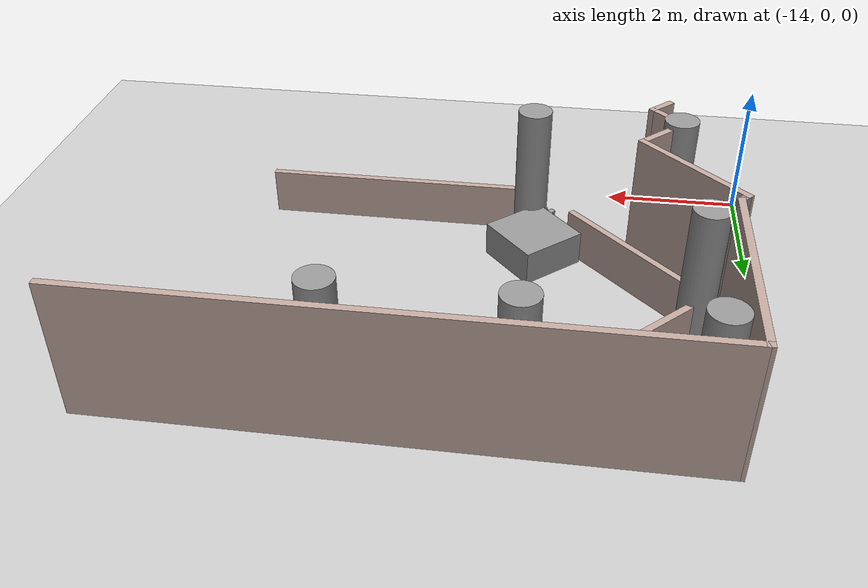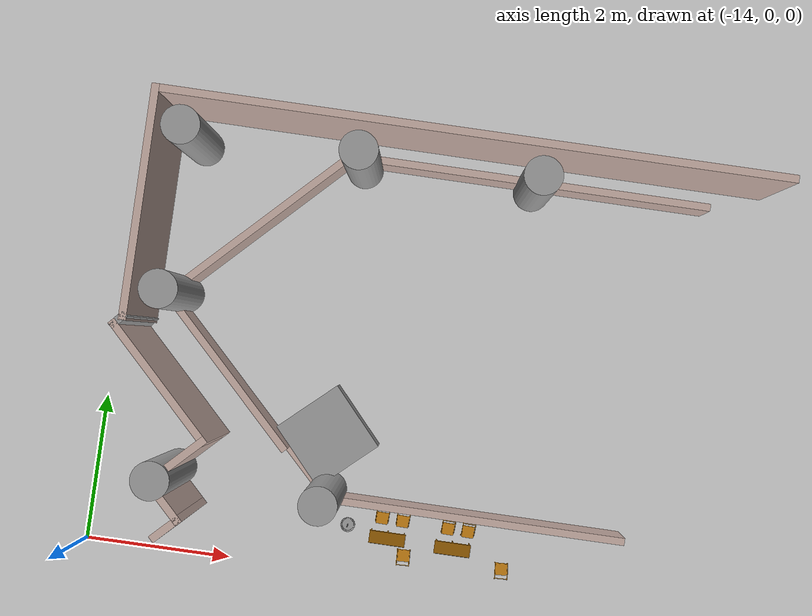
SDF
<sdf version="1.6">
 <world name="default">
  <model name="ground_plane">
   <static>1</static>
   <link name="link">
    <collision name="collision">
     <geometry><plane><normal>0 0 1</normal><size>100 100</size></plane></geometry>
     <surface>
      <contact><collide_bitmask>65535</collide_bitmask></contact>
      <friction><ode><mu>100</mu><mu2>50</mu2></ode></friction>
     </surface>
    </collision>
    <visual name="visual">
     <cast_shadows>0</cast_shadows>
     <geometry><plane><normal>0 0 1</normal><size>100 100</size></plane></geometry>
     <material>
      <script><uri>file://media/materials/scripts/gazebo.material</uri><name>Gazebo/Grey</name></script>
     </material>
    </visual>
   </link>
  </model>
  <model name="gedung_p">
   <pose>2.96636 -2.09069 0 0 -0 0</pose>
   <link name="Wall_17">
    <collision name="Wall_17_Collision">
     <geometry><box><size>0.449929 0.1 2</size></box></geometry>
     <pose>0 0 1 0 -0 0</pose>
    </collision>
    <visual name="Wall_17_Visual">
     <pose>0 0 1 0 -0 0</pose>
     <geometry><box><size>0.449929 0.1 2</size></box></geometry>
     <material>
      <script><uri>file://media/materials/scripts/gazebo.material</uri><name>Gazebo/Grey</name></script>
      <ambient>0.760784 0.662745 0.627451 1</ambient>
     </material>
     <meta><layer>0</layer></meta>
    </visual>
    <pose>-15.574 2.6753 0 0 -0 0.785398</pose>
   </link>
   <link name="Wall_18">
    <collision name="Wall_18_Collision">
     <geometry><box><size>0.7 0.1 2</size></box></geometry>
     <pose>0 0 1 0 -0 0</pose>
    </collision>
    <visual name="Wall_18_Visual">
     <pose>0 0 1 0 -0 0</pose>
     <geometry><box><size>0.7 0.1 2</size></box></geometry>
     <material>
      <script><uri>file://media/materials/scripts/gazebo.material</uri><name>Gazebo/Grey</name></script>
      <ambient>0.760784 0.662745 0.627451 1</ambient>
     </material>
     <meta><layer>0</layer></meta>
    </visual>
    <pose>-15.6625 3.01131 0 0 -0 2.35502</pose>
   </link>
   <link name="Wall_19">
    <collision name="Wall_19_Collision">
     <geometry><box><size>0.949911 0.1 2</size></box></geometry>
     <pose>0 0 1 0 -0 0</pose>
    </collision>
    <visual name="Wall_19_Visual">
     <pose>0 0 1 0 -0 0</pose>
     <geometry><box><size>0.949911 0.1 2</size></box></geometry>
     <material>
      <script><uri>file://media/materials/scripts/gazebo.material</uri><name>Gazebo/Grey</name></script>
      <ambient>0.760784 0.662745 0.627451 1</ambient>
     </material>
     <meta><layer>0</layer></meta>
    </visual>
    <pose>-15.574 3.52431 0 0 -0 0.785398</pose>
   </link>
   <link name="Wall_21">
    <collision name="Wall_21_Collision">
     <geometry><box><size>1.95 0.1 2</size></box></geometry>
     <pose>0 0 1 0 -0 0</pose>
    </collision>
    <visual name="Wall_21_Visual">
     <pose>0 0 1 0 -0 0</pose>
     <geometry><box><size>1.95 0.1 2</size></box></geometry>
     <material>
      <script><uri>file://media/materials/scripts/gazebo.material</uri><name>Gazebo/Grey</name></script>
      <ambient>0.760784 0.662745 0.627451 1</ambient>
     </material>
     <meta><layer>0</layer></meta>
    </visual>
    <pose>-15.9275 4.47881 0 0 -0 2.35619</pose>
   </link>
   <link name="Wall_22">
    <collision name="Wall_22_Collision">
     <geometry><box><size>0.246659 0.1 2</size></box></geometry>
     <pose>0 0 1 0 -0 0</pose>
    </collision>
    <visual name="Wall_22_Visual">
     <pose>0 0 1 0 -0 0</pose>
     <geometry><box><size>0.246659 0.1 2</size></box></geometry>
     <material>
      <script><uri>file://media/materials/scripts/gazebo.material</uri><name>Gazebo/Grey</name></script>
      <ambient>1 1 1 1</ambient>
     </material>
     <meta><layer>0</layer></meta>
    </visual>
    <pose>-16.533 5.1878 0 0 -0 0.848118</pose>
   </link>
   <link name="Wall_23">
    <collision name="Wall_23_Collision">
     <geometry><box><size>3 0.1 2</size></box></geometry>
     <pose>0 0 1 0 -0 0</pose>
    </collision>
    <visual name="Wall_23_Visual">
     <pose>0 0 1 0 -0 0</pose>
     <geometry><box><size>3 0.1 2</size></box></geometry>
     <material>
      <script><uri>file://media/materials/scripts/gazebo.material</uri><name>Gazebo/Grey</name></script>
      <ambient>0.760784 0.662745 0.627451 1</ambient>
     </material>
     <meta><layer>0</layer></meta>
    </visual>
    <pose>-16.4845 6.6928 0 0 -0 1.5708</pose>
   </link>
   <link name="Wall_25">
    <collision name="Wall_25_Collision">
     <geometry><box><size>8.2039 0.1 2</size></box></geometry>
     <pose>0 0 1 0 -0 0</pose>
    </collision>
    <visual name="Wall_25_Visual">
     <pose>0 0 1 0 -0 0</pose>
     <geometry><box><size>8.2039 0.1 2</size></box></geometry>
     <material>
      <script><uri>file://media/materials/scripts/gazebo.material</uri><name>Gazebo/Grey</name></script>
      <ambient>0.760784 0.662745 0.627451 1</ambient>
     </material>
     <meta><layer>0</layer></meta>
    </visual>
    <pose>-12.4325 8.1463 0 0 -0 0.000864</pose>
   </link>
   <link name="Wall_46">
    <collision name="Wall_46_Collision">
     <geometry><box><size>4.2 0.1 0.7</size></box></geometry>
     <pose>0 0 0.35 0 -0 0</pose>
    </collision>
    <visual name="Wall_46_Visual">
     <pose>0 0 0.35 0 -0 0</pose>
     <geometry><box><size>4.2 0.1 0.7</size></box></geometry>
     <material>
      <script><uri>file://media/materials/scripts/gazebo.material</uri><name>Gazebo/Grey</name></script>
      <ambient>0.760784 0.662745 0.627451 1</ambient>
     </material>
     <meta><layer>0</layer></meta>
    </visual>
    <pose>-11.7325 3.17481 0 0 -0 3.14159</pose>
   </link>
   <link name="Wall_54">
    <collision name="Wall_54_Collision">
     <geometry><box><size>0.95 0.1 0.1</size></box></geometry>
     <pose>0 0 0.05 0 -0 0</pose>
    </collision>
    <visual name="Wall_54_Visual">
     <pose>0 0 0.05 0 -0 0</pose>
     <geometry><box><size>0.95 0.1 0.1</size></box></geometry>
     <material>
      <script><uri>file://media/materials/scripts/gazebo.material</uri><name>Gazebo/Grey</name></script>
      <ambient>0.760784 0.662745 0.627451 1</ambient>
     </material>
     <meta><layer>0</layer></meta>
    </visual>
    <pose>-14.083 3.47531 0 0 -0 2.35619</pose>
   </link>
   <link name="Wall_55">
    <collision name="Wall_55_Collision">
     <geometry><box><size>2.7 0.1 0.7</size></box></geometry>
     <pose>0 0 0.35 0 -0 0</pose>
    </collision>
    <visual name="Wall_55_Visual">
     <pose>0 0 0.35 0 -0 0</pose>
     <geometry><box><size>2.7 0.1 0.7</size></box></geometry>
     <material>
      <script><uri>file://media/materials/scripts/gazebo.material</uri><name>Gazebo/Grey</name></script>
      <ambient>0.760784 0.662745 0.627451 1</ambient>
     </material>
     <meta><layer>0</layer></meta>
    </visual>
    <pose>-15.3025 4.6948 0 0 -0 2.35619</pose>
   </link>
   <link name="Wall_84">
    <collision name="Wall_84_Collision">
     <geometry><box><size>3.2 0.1 0.7</size></box></geometry>
     <pose>0 0 0.35 0 -0 0</pose>
    </collision>
    <visual name="Wall_84_Visual">
     <pose>0 0 0.35 0 -0 0</pose>
     <geometry><box><size>3.2 0.1 0.7</size></box></geometry>
     <material>
      <script><uri>file://media/materials/scripts/gazebo.material</uri><name>Gazebo/Grey</name></script>
      <ambient>0.760784 0.662745 0.627451 1</ambient>
     </material>
     <meta><layer>0</layer></meta>
    </visual>
    <pose>-15.1255 6.70981 0 0 -0 0.785398</pose>
   </link>
   <link name="Wall_86">
    <collision name="Wall_86_Collision">
     <geometry><box><size>4.95 0.1 0.7</size></box></geometry>
     <pose>0 0 0.35 0 -0 0</pose>
    </collision>
    <visual name="Wall_86_Visual">
     <pose>0 0 0.35 0 -0 0</pose>
     <geometry><box><size>4.95 0.1 0.7</size></box></geometry>
     <material>
      <script><uri>file://media/materials/scripts/gazebo.material</uri><name>Gazebo/Grey</name></script>
      <ambient>0.760784 0.662745 0.627451 1</ambient>
     </material>
     <meta><layer>0</layer></meta>
    </visual>
    <pose>-11.6045 7.80581 0 0 -0 0</pose>
   </link>
   <static>1</static>
  </model>
  <model name="tiang_besar_4">
   <link name="link_0">
    <inertial>
     <mass>1</mass>
     <inertia>
      <ixx>0.166667</ixx>
      <ixy>0</ixy>
      <ixz>0</ixz>
      <iyy>0.166667</iyy>
      <iyz>0</iyz>
      <izz>0.166667</izz>
     </inertia>
    </inertial>
    <pose>0.080543 -0.031124 0 0 -0 0</pose>
    <visual name="visual">
     <geometry>
      <mesh><uri>/home/thardi/Gazebo Objek/cylinder sedang.dae</uri><scale>1 1 1.15</scale></mesh>
     </geometry>
     <material>
      <lighting>1</lighting>
      <script><uri>file://media/materials/scripts/gazebo.material</uri><name>Gazebo/Grey</name></script>
      <shader type="vertex"><normal_map>__default__</normal_map></shader>
      <ambient>0.3 0.3 0.3 1</ambient>
      <diffuse>0.7 0.7 0.7 1</diffuse>
      <specular>0.01 0.01 0.01 1</specular>
      <emissive>0 0 0 1</emissive>
     </material>
    </visual>
    <collision name="collision">
     <geometry>
      <mesh><uri>/home/thardi/Gazebo Objek/cylinder sedang.dae</uri><scale>1 1 1.15</scale></mesh>
     </geometry>
     <surface>
      <friction>
       <ode><mu>1.15</mu><mu2>1</mu2><fdir1>0 0 0</fdir1><slip1>0</slip1><slip2>0</slip2></ode>
       <torsional>
        <coefficient>1</coefficient>
        <patch_radius>0</patch_radius>
        <surface_radius>0</surface_radius>
        <use_patch_radius>1</use_patch_radius>
        <ode><slip>0</slip></ode>
       </torsional>
      </friction>
      <bounce><restitution_coefficient>0</restitution_coefficient><threshold>1e+06</threshold></bounce>
      <contact>
       <collide_without_contact>0</collide_without_contact>
       <collide_without_contact_bitmask>1</collide_without_contact_bitmask>
       <collide_bitmask>1</collide_bitmask>
       <ode>
        <soft_cfm>0</soft_cfm>
        <soft_erp>0.2</soft_erp>
        <kp>1e+13</kp>
        <kd>1</kd>
        <max_vel>0.01</max_vel>
        <min_depth>0</min_depth>
       </ode>
       <bullet>
        <split_impulse>1</split_impulse>
        <split_impulse_penetration_threshold>-0.01</split_impulse_penetration_threshold>
        <soft_cfm>0</soft_cfm>
        <soft_erp>0.2</soft_erp>
        <kp>1e+13</kp>
        <kd>1</kd>
       </bullet>
      </contact>
     </surface>
    </collision>
   </link>
   <static>1</static>
   <pose>-10.8337 1.18079 0 0 -0 0</pose>
  </model>
  <model name="tiang_besar_6">
   <link name="link_0">
    <inertial>
     <mass>1</mass>
     <inertia>
      <ixx>0.166667</ixx>
      <ixy>0</ixy>
      <ixz>0</ixz>
      <iyy>0.166667</iyy>
      <iyz>0</iyz>
      <izz>0.166667</izz>
     </inertia>
    </inertial>
    <pose>0.080543 -0.031124 0 0 -0 0</pose>
    <visual name="visual">
     <geometry>
      <mesh><uri>/home/thardi/Gazebo Objek/cylinder sedang.dae</uri><scale>1 1 1.15</scale></mesh>
     </geometry>
     <material>
      <lighting>1</lighting>
      <script><uri>file://media/materials/scripts/gazebo.material</uri><name>Gazebo/Grey</name></script>
      <shader type="vertex"><normal_map>__default__</normal_map></shader>
      <ambient>0.3 0.3 0.3 1</ambient>
      <diffuse>0.7 0.7 0.7 1</diffuse>
      <specular>0.01 0.01 0.01 1</specular>
      <emissive>0 0 0 1</emissive>
     </material>
    </visual>
    <collision name="collision">
     <geometry>
      <mesh><uri>/home/thardi/Gazebo Objek/cylinder sedang.dae</uri><scale>1 1 1.15</scale></mesh>
     </geometry>
     <surface>
      <friction>
       <ode><mu>1.15</mu><mu2>1</mu2><fdir1>0 0 0</fdir1><slip1>0</slip1><slip2>0</slip2></ode>
       <torsional>
        <coefficient>1</coefficient>
        <patch_radius>0</patch_radius>
        <surface_radius>0</surface_radius>
        <use_patch_radius>1</use_patch_radius>
        <ode><slip>0</slip></ode>
       </torsional>
      </friction>
      <bounce><restitution_coefficient>0</restitution_coefficient><threshold>1e+06</threshold></bounce>
      <contact>
       <collide_without_contact>0</collide_without_contact>
       <collide_without_contact_bitmask>1</collide_without_contact_bitmask>
       <collide_bitmask>1</collide_bitmask>
       <ode>
        <soft_cfm>0</soft_cfm>
        <soft_erp>0.2</soft_erp>
        <kp>1e+13</kp>
        <kd>1</kd>
        <max_vel>0.01</max_vel>
        <min_depth>0</min_depth>
       </ode>
       <bullet>
        <split_impulse>1</split_impulse>
        <split_impulse_penetration_threshold>-0.01</split_impulse_penetration_threshold>
        <soft_cfm>0</soft_cfm>
        <soft_erp>0.2</soft_erp>
        <kp>1e+13</kp>
        <kd>1</kd>
       </bullet>
      </contact>
     </surface>
    </collision>
   </link>
   <static>1</static>
   <pose>-12.9543 1.19223 0 0 -0 0</pose>
  </model>
  <model name="tiang_besar_7">
   <link name="link_0">
    <inertial>
     <mass>1</mass>
     <inertia>
      <ixx>0.166667</ixx>
      <ixy>0</ixy>
      <ixz>0</ixz>
      <iyy>0.166667</iyy>
      <iyz>0</iyz>
      <izz>0.166667</izz>
     </inertia>
    </inertial>
    <pose>0.080543 -0.031124 0 0 -0 0</pose>
    <visual name="visual">
     <geometry>
      <mesh><uri>/home/thardi/Gazebo Objek/cylinder sedang.dae</uri><scale>1 1 1.15</scale></mesh>
     </geometry>
     <material>
      <lighting>1</lighting>
      <script><uri>file://media/materials/scripts/gazebo.material</uri><name>Gazebo/Grey</name></script>
      <shader type="vertex"><normal_map>__default__</normal_map></shader>
      <ambient>0.3 0.3 0.3 1</ambient>
      <diffuse>0.7 0.7 0.7 1</diffuse>
      <specular>0.01 0.01 0.01 1</specular>
      <emissive>0 0 0 1</emissive>
     </material>
    </visual>
    <collision name="collision">
     <geometry>
      <mesh><uri>/home/thardi/Gazebo Objek/cylinder sedang.dae</uri><scale>1 1 1.15</scale></mesh>
     </geometry>
     <surface>
      <friction>
       <ode><mu>1.15</mu><mu2>1</mu2><fdir1>0 0 0</fdir1><slip1>0</slip1><slip2>0</slip2></ode>
       <torsional>
        <coefficient>1</coefficient>
        <patch_radius>0</patch_radius>
        <surface_radius>0</surface_radius>
        <use_patch_radius>1</use_patch_radius>
        <ode><slip>0</slip></ode>
       </torsional>
      </friction>
      <bounce><restitution_coefficient>0</restitution_coefficient><threshold>1e+06</threshold></bounce>
      <contact>
       <collide_without_contact>0</collide_without_contact>
       <collide_without_contact_bitmask>1</collide_without_contact_bitmask>
       <collide_bitmask>1</collide_bitmask>
       <ode>
        <soft_cfm>0</soft_cfm>
        <soft_erp>0.2</soft_erp>
        <kp>1e+13</kp>
        <kd>1</kd>
        <max_vel>0.01</max_vel>
        <min_depth>0</min_depth>
       </ode>
       <bullet>
        <split_impulse>1</split_impulse>
        <split_impulse_penetration_threshold>-0.01</split_impulse_penetration_threshold>
        <soft_cfm>0</soft_cfm>
        <soft_erp>0.2</soft_erp>
        <kp>1e+13</kp>
        <kd>1</kd>
       </bullet>
      </contact>
     </surface>
    </collision>
   </link>
   <static>1</static>
   <pose>-13.1921 3.58646 0 0 -0 0</pose>
  </model>
  <model name="tiang_besar_8">
   <link name="link_0">
    <inertial>
     <mass>1</mass>
     <inertia>
      <ixx>0.166667</ixx>
      <ixy>0</ixy>
      <ixz>0</ixz>
      <iyy>0.166667</iyy>
      <iyz>0</iyz>
      <izz>0.166667</izz>
     </inertia>
    </inertial>
    <pose>0.080543 -0.031124 0 0 -0 0</pose>
    <visual name="visual">
     <geometry>
      <mesh><uri>/home/thardi/Gazebo Objek/cylinder sedang.dae</uri><scale>1 1 1.15</scale></mesh>
     </geometry>
     <material>
      <lighting>1</lighting>
      <script><uri>file://media/materials/scripts/gazebo.material</uri><name>Gazebo/Grey</name></script>
      <shader type="vertex"><normal_map>__default__</normal_map></shader>
      <ambient>0.3 0.3 0.3 1</ambient>
      <diffuse>0.7 0.7 0.7 1</diffuse>
      <specular>0.01 0.01 0.01 1</specular>
      <emissive>0 0 0 1</emissive>
     </material>
    </visual>
    <collision name="collision">
     <geometry>
      <mesh><uri>/home/thardi/Gazebo Objek/cylinder sedang.dae</uri><scale>1 1 1.15</scale></mesh>
     </geometry>
     <surface>
      <friction>
       <ode><mu>1.15</mu><mu2>1</mu2><fdir1>0 0 0</fdir1><slip1>0</slip1><slip2>0</slip2></ode>
       <torsional>
        <coefficient>1</coefficient>
        <patch_radius>0</patch_radius>
        <surface_radius>0</surface_radius>
        <use_patch_radius>1</use_patch_radius>
        <ode><slip>0</slip></ode>
       </torsional>
      </friction>
      <bounce><restitution_coefficient>0</restitution_coefficient><threshold>1e+06</threshold></bounce>
      <contact>
       <collide_without_contact>0</collide_without_contact>
       <collide_without_contact_bitmask>1</collide_without_contact_bitmask>
       <collide_bitmask>1</collide_bitmask>
       <ode>
        <soft_cfm>0</soft_cfm>
        <soft_erp>0.2</soft_erp>
        <kp>1e+13</kp>
        <kd>1</kd>
        <max_vel>0.01</max_vel>
        <min_depth>0</min_depth>
       </ode>
       <bullet>
        <split_impulse>1</split_impulse>
        <split_impulse_penetration_threshold>-0.01</split_impulse_penetration_threshold>
        <soft_cfm>0</soft_cfm>
        <soft_erp>0.2</soft_erp>
        <kp>1e+13</kp>
        <kd>1</kd>
       </bullet>
      </contact>
     </surface>
    </collision>
   </link>
   <static>1</static>
   <pose>-10.9585 5.65782 0 0 -0 0</pose>
  </model>
  <model name="tiang_besar_9">
   <link name="link_0">
    <inertial>
     <mass>1</mass>
     <inertia>
      <ixx>0.166667</ixx>
      <ixy>0</ixy>
      <ixz>0</ixz>
      <iyy>0.166667</iyy>
      <iyz>0</iyz>
      <izz>0.166667</izz>
     </inertia>
    </inertial>
    <pose>0.080543 -0.031124 0 0 -0 0</pose>
    <visual name="visual">
     <geometry>
      <mesh><uri>/home/thardi/Gazebo Objek/cylinder sedang.dae</uri><scale>1 1 1.15</scale></mesh>
     </geometry>
     <material>
      <lighting>1</lighting>
      <script><uri>file://media/materials/scripts/gazebo.material</uri><name>Gazebo/Grey</name></script>
      <shader type="vertex"><normal_map>__default__</normal_map></shader>
      <ambient>0.3 0.3 0.3 1</ambient>
      <diffuse>0.7 0.7 0.7 1</diffuse>
      <specular>0.01 0.01 0.01 1</specular>
      <emissive>0 0 0 1</emissive>
     </material>
    </visual>
    <collision name="collision">
     <geometry>
      <mesh><uri>/home/thardi/Gazebo Objek/cylinder sedang.dae</uri><scale>1 1 1.15</scale></mesh>
     </geometry>
     <surface>
      <friction>
       <ode><mu>1.15</mu><mu2>1</mu2><fdir1>0 0 0</fdir1><slip1>0</slip1><slip2>0</slip2></ode>
       <torsional>
        <coefficient>1</coefficient>
        <patch_radius>0</patch_radius>
        <surface_radius>0</surface_radius>
        <use_patch_radius>1</use_patch_radius>
        <ode><slip>0</slip></ode>
       </torsional>
      </friction>
      <bounce><restitution_coefficient>0</restitution_coefficient><threshold>1e+06</threshold></bounce>
      <contact>
       <collide_without_contact>0</collide_without_contact>
       <collide_without_contact_bitmask>1</collide_without_contact_bitmask>
       <collide_bitmask>1</collide_bitmask>
       <ode>
        <soft_cfm>0</soft_cfm>
        <soft_erp>0.2</soft_erp>
        <kp>1e+13</kp>
        <kd>1</kd>
        <max_vel>0.01</max_vel>
        <min_depth>0</min_depth>
       </ode>
       <bullet>
        <split_impulse>1</split_impulse>
        <split_impulse_penetration_threshold>-0.01</split_impulse_penetration_threshold>
        <soft_cfm>0</soft_cfm>
        <soft_erp>0.2</soft_erp>
        <kp>1e+13</kp>
        <kd>1</kd>
       </bullet>
      </contact>
     </surface>
    </collision>
   </link>
   <static>1</static>
   <pose>-13.2077 5.65691 0 0 -0 0</pose>
  </model>
  <model name="tiang_besar_10">
   <link name="link_0">
    <inertial>
     <mass>1</mass>
     <inertia>
      <ixx>0.166667</ixx>
      <ixy>0</ixy>
      <ixz>0</ixz>
      <iyy>0.166667</iyy>
      <iyz>0</iyz>
      <izz>0.166667</izz>
     </inertia>
    </inertial>
    <pose>0.080543 -0.031124 0 0 -0 0</pose>
    <visual name="visual">
     <geometry>
      <mesh><uri>/home/thardi/Gazebo Objek/cylinder sedang.dae</uri><scale>1 1 1.15</scale></mesh>
     </geometry>
     <material>
      <lighting>1</lighting>
      <script><uri>file://media/materials/scripts/gazebo.material</uri><name>Gazebo/Grey</name></script>
      <shader type="vertex"><normal_map>__default__</normal_map></shader>
      <ambient>0.3 0.3 0.3 1</ambient>
      <diffuse>0.7 0.7 0.7 1</diffuse>
      <specular>0.01 0.01 0.01 1</specular>
      <emissive>0 0 0 1</emissive>
     </material>
    </visual>
    <collision name="collision">
     <geometry>
      <mesh><uri>/home/thardi/Gazebo Objek/cylinder sedang.dae</uri><scale>1 1 1.15</scale></mesh>
     </geometry>
     <surface>
      <friction>
       <ode><mu>1.15</mu><mu2>1</mu2><fdir1>0 0 0</fdir1><slip1>0</slip1><slip2>0</slip2></ode>
       <torsional>
        <coefficient>1</coefficient>
        <patch_radius>0</patch_radius>
        <surface_radius>0</surface_radius>
        <use_patch_radius>1</use_patch_radius>
        <ode><slip>0</slip></ode>
       </torsional>
      </friction>
      <bounce><restitution_coefficient>0</restitution_coefficient><threshold>1e+06</threshold></bounce>
      <contact>
       <collide_without_contact>0</collide_without_contact>
       <collide_without_contact_bitmask>1</collide_without_contact_bitmask>
       <collide_bitmask>1</collide_bitmask>
       <ode>
        <soft_cfm>0</soft_cfm>
        <soft_erp>0.2</soft_erp>
        <kp>1e+13</kp>
        <kd>1</kd>
        <max_vel>0.01</max_vel>
        <min_depth>0</min_depth>
       </ode>
       <bullet>
        <split_impulse>1</split_impulse>
        <split_impulse_penetration_threshold>-0.01</split_impulse_penetration_threshold>
        <soft_cfm>0</soft_cfm>
        <soft_erp>0.2</soft_erp>
        <kp>1e+13</kp>
        <kd>1</kd>
       </bullet>
      </contact>
     </surface>
    </collision>
   </link>
   <static>1</static>
   <pose>-8.62433 5.67197 0 0 -0 0</pose>
  </model>
  <model name="meja_kantin">
   <link name="link_9">
    <inertial>
     <mass>1</mass>
     <inertia>
      <ixx>0.166667</ixx>
      <ixy>0</ixy>
      <ixz>0</ixz>
      <iyy>0.166667</iyy>
      <iyz>0</iyz>
      <izz>0.166667</izz>
     </inertia>
    </inertial>
    <visual name="visual">
     <geometry>
      <mesh><uri>/home/thardi/Gazebo Objek/meja kantin.dae</uri><scale>0.25 0.25 0.3</scale></mesh>
     </geometry>
     <material>
      <lighting>1</lighting>
      <script><uri>file://media/materials/scripts/gazebo.material</uri><name>Gazebo/Grey</name></script>
      <shader type="vertex"><normal_map>__default__</normal_map></shader>
      <ambient>0.561 0.349 0.008 1</ambient>
      <diffuse>0.561 0.349 0.008 1</diffuse>
      <specular>0.561 0.349 0.008 1</specular>
      <emissive>0.561 0.349 0.008 1</emissive>
     </material>
    </visual>
    <collision name="collision">
     <geometry>
      <mesh><uri>/home/thardi/Gazebo Objek/meja kantin.dae</uri><scale>0.25 0.25 0.3</scale></mesh>
     </geometry>
     <surface>
      <friction>
       <ode><mu>1</mu><mu2>1</mu2><fdir1>0 0 0</fdir1><slip1>0</slip1><slip2>0</slip2></ode>
       <torsional>
        <coefficient>1</coefficient>
        <patch_radius>0</patch_radius>
        <surface_radius>0</surface_radius>
        <use_patch_radius>1</use_patch_radius>
        <ode><slip>0</slip></ode>
       </torsional>
      </friction>
      <bounce><restitution_coefficient>0</restitution_coefficient><threshold>1e+06</threshold></bounce>
      <contact>
       <collide_without_contact>0</collide_without_contact>
       <collide_without_contact_bitmask>1</collide_without_contact_bitmask>
       <collide_bitmask>1</collide_bitmask>
       <ode>
        <soft_cfm>0</soft_cfm>
        <soft_erp>0.2</soft_erp>
        <kp>1e+13</kp>
        <kd>1</kd>
        <max_vel>0.01</max_vel>
        <min_depth>0</min_depth>
       </ode>
       <bullet>
        <split_impulse>1</split_impulse>
        <split_impulse_penetration_threshold>-0.01</split_impulse_penetration_threshold>
        <soft_cfm>0</soft_cfm>
        <soft_erp>0.2</soft_erp>
        <kp>1e+13</kp>
        <kd>1</kd>
       </bullet>
      </contact>
     </surface>
    </collision>
   </link>
   <static>1</static>
   <pose>-9.84676 0.606083 0 0 -0 0</pose>
  </model>
  <model name="meja_kantin_0">
   <link name="link_9">
    <inertial>
     <mass>1</mass>
     <inertia>
      <ixx>0.166667</ixx>
      <ixy>0</ixy>
      <ixz>0</ixz>
      <iyy>0.166667</iyy>
      <iyz>0</iyz>
      <izz>0.166667</izz>
     </inertia>
    </inertial>
    <visual name="visual">
     <geometry>
      <mesh><uri>/home/thardi/Gazebo Objek/meja kantin.dae</uri><scale>0.25 0.25 0.3</scale></mesh>
     </geometry>
     <material>
      <lighting>1</lighting>
      <script><uri>file://media/materials/scripts/gazebo.material</uri><name>Gazebo/Grey</name></script>
      <shader type="vertex"><normal_map>__default__</normal_map></shader>
      <ambient>0.561 0.349 0.008 1</ambient>
      <diffuse>0.561 0.349 0.008 1</diffuse>
      <specular>0.561 0.349 0.008 1</specular>
      <emissive>0.561 0.349 0.008 1</emissive>
     </material>
    </visual>
    <collision name="collision">
     <geometry>
      <mesh><uri>/home/thardi/Gazebo Objek/meja kantin.dae</uri><scale>0.25 0.25 0.3</scale></mesh>
     </geometry>
     <surface>
      <friction>
       <ode><mu>1</mu><mu2>1</mu2><fdir1>0 0 0</fdir1><slip1>0</slip1><slip2>0</slip2></ode>
       <torsional>
        <coefficient>1</coefficient>
        <patch_radius>0</patch_radius>
        <surface_radius>0</surface_radius>
        <use_patch_radius>1</use_patch_radius>
        <ode><slip>0</slip></ode>
       </torsional>
      </friction>
      <bounce><restitution_coefficient>0</restitution_coefficient><threshold>1e+06</threshold></bounce>
      <contact>
       <collide_without_contact>0</collide_without_contact>
       <collide_without_contact_bitmask>1</collide_without_contact_bitmask>
       <collide_bitmask>1</collide_bitmask>
       <ode>
        <soft_cfm>0</soft_cfm>
        <soft_erp>0.2</soft_erp>
        <kp>1e+13</kp>
        <kd>1</kd>
        <max_vel>0.01</max_vel>
        <min_depth>0</min_depth>
       </ode>
       <bullet>
        <split_impulse>1</split_impulse>
        <split_impulse_penetration_threshold>-0.01</split_impulse_penetration_threshold>
        <soft_cfm>0</soft_cfm>
        <soft_erp>0.2</soft_erp>
        <kp>1e+13</kp>
        <kd>1</kd>
       </bullet>
      </contact>
     </surface>
    </collision>
   </link>
   <static>1</static>
   <pose>-8.935 0.590761 0 0 -0 0</pose>
  </model>
  <model name="pot">
   <link name="link_12">
    <inertial>
     <mass>1</mass>
     <inertia>
      <ixx>0.166667</ixx>
      <ixy>0</ixy>
      <ixz>0</ixz>
      <iyy>0.166667</iyy>
      <iyz>0</iyz>
      <izz>0.166667</izz>
     </inertia>
    </inertial>
    <visual name="visual">
     <geometry><mesh><uri>/home/thardi/Gazebo Objek/pot.dae</uri><scale>0.2 0.2 0.2</scale></mesh></geometry>
     <material>
      <lighting>1</lighting>
      <script><uri>file://media/materials/scripts/gazebo.material</uri><name>Gazebo/Grey</name></script>
      <shader type="vertex"><normal_map>__default__</normal_map></shader>
      <ambient>0.3 0.3 0.3 1</ambient>
      <diffuse>0.7 0.7 0.7 1</diffuse>
      <specular>0.01 0.01 0.01 1</specular>
      <emissive>0 0 0 1</emissive>
     </material>
    </visual>
    <collision name="collision">
     <geometry><mesh><uri>/home/thardi/Gazebo Objek/pot.dae</uri><scale>0.2 0.2 0.2</scale></mesh></geometry>
     <surface>
      <friction>
       <ode><mu>1</mu><mu2>1</mu2><fdir1>0 0 0</fdir1><slip1>0</slip1><slip2>0</slip2></ode>
       <torsional>
        <coefficient>1</coefficient>
        <patch_radius>0</patch_radius>
        <surface_radius>0</surface_radius>
        <use_patch_radius>1</use_patch_radius>
        <ode><slip>0</slip></ode>
       </torsional>
      </friction>
      <bounce><restitution_coefficient>0</restitution_coefficient><threshold>1e+06</threshold></bounce>
      <contact>
       <collide_without_contact>0</collide_without_contact>
       <collide_without_contact_bitmask>1</collide_without_contact_bitmask>
       <collide_bitmask>1</collide_bitmask>
       <ode>
        <soft_cfm>0</soft_cfm>
        <soft_erp>0.2</soft_erp>
        <kp>1e+13</kp>
        <kd>1</kd>
        <max_vel>0.01</max_vel>
        <min_depth>0</min_depth>
       </ode>
       <bullet>
        <split_impulse>1</split_impulse>
        <split_impulse_penetration_threshold>-0.01</split_impulse_penetration_threshold>
        <soft_cfm>0</soft_cfm>
        <soft_erp>0.2</soft_erp>
        <kp>1e+13</kp>
        <kd>1</kd>
       </bullet>
      </contact>
     </surface>
    </collision>
   </link>
   <static>1</static>
   <pose>-10.5189 0.809785 0 0 -0 0</pose>
  </model>
  <model name="tong_sampah">
   <link name="link_13">
    <inertial>
     <mass>1</mass>
     <inertia>
      <ixx>0.166667</ixx>
      <ixy>0</ixy>
      <ixz>0</ixz>
      <iyy>0.166667</iyy>
      <iyz>0</iyz>
      <izz>0.166667</izz>
     </inertia>
    </inertial>
    <visual name="visual">
     <geometry>
      <mesh><uri>/home/thardi/Gazebo Objek/tong sampah.dae</uri><scale>0.05 0.05 0.05</scale></mesh>
     </geometry>
     <material>
      <lighting>1</lighting>
      <script><uri>file://media/materials/scripts/gazebo.material</uri><name>Gazebo/Grey</name></script>
      <shader type="vertex"><normal_map>__default__</normal_map></shader>
      <ambient>0.3 0.3 0.3 1</ambient>
      <diffuse>0.7 0.7 0.7 1</diffuse>
      <specular>0.01 0.01 0.01 1</specular>
      <emissive>0 0 0 1</emissive>
     </material>
    </visual>
    <collision name="collision">
     <geometry>
      <mesh><uri>/home/thardi/Gazebo Objek/tong sampah.dae</uri><scale>0.05 0.05 0.05</scale></mesh>
     </geometry>
     <surface>
      <friction>
       <ode><mu>1</mu><mu2>1</mu2><fdir1>0 0 0</fdir1><slip1>0</slip1><slip2>0</slip2></ode>
       <torsional>
        <coefficient>1</coefficient>
        <patch_radius>0</patch_radius>
        <surface_radius>0</surface_radius>
        <use_patch_radius>1</use_patch_radius>
        <ode><slip>0</slip></ode>
       </torsional>
      </friction>
      <bounce><restitution_coefficient>0</restitution_coefficient><threshold>1e+06</threshold></bounce>
      <contact>
       <collide_without_contact>0</collide_without_contact>
       <collide_without_contact_bitmask>1</collide_without_contact_bitmask>
       <collide_bitmask>1</collide_bitmask>
       <ode>
        <soft_cfm>0</soft_cfm>
        <soft_erp>0.2</soft_erp>
        <kp>1e+13</kp>
        <kd>1</kd>
        <max_vel>0.01</max_vel>
        <min_depth>0</min_depth>
       </ode>
       <bullet>
        <split_impulse>1</split_impulse>
        <split_impulse_penetration_threshold>-0.01</split_impulse_penetration_threshold>
        <soft_cfm>0</soft_cfm>
        <soft_erp>0.2</soft_erp>
        <kp>1e+13</kp>
        <kd>1</kd>
       </bullet>
      </contact>
     </surface>
    </collision>
   </link>
   <static>1</static>
   <pose>-11.0722 0.769028 0 0 -0 0.874799</pose>
  </model>
  <model name="tong_sampah_clone">
   <link name="link_13">
    <inertial>
     <mass>1</mass>
     <inertia>
      <ixx>0.166667</ixx>
      <ixy>0</ixy>
      <ixz>0</ixz>
      <iyy>0.166667</iyy>
      <iyz>0</iyz>
      <izz>0.166667</izz>
     </inertia>
    </inertial>
    <visual name="visual">
     <geometry>
      <mesh><uri>/home/thardi/Gazebo Objek/tong sampah.dae</uri><scale>0.05 0.05 0.05</scale></mesh>
     </geometry>
     <material>
      <lighting>1</lighting>
      <script><uri>file://media/materials/scripts/gazebo.material</uri><name>Gazebo/Grey</name></script>
      <shader type="vertex"><normal_map>__default__</normal_map></shader>
      <ambient>0.3 0.3 0.3 1</ambient>
      <diffuse>0.7 0.7 0.7 1</diffuse>
      <specular>0.01 0.01 0.01 1</specular>
      <emissive>0 0 0 1</emissive>
     </material>
    </visual>
    <collision name="collision">
     <geometry>
      <mesh><uri>/home/thardi/Gazebo Objek/tong sampah.dae</uri><scale>0.05 0.05 0.05</scale></mesh>
     </geometry>
     <surface>
      <friction>
       <ode><mu>1</mu><mu2>1</mu2><fdir1>0 0 0</fdir1><slip1>0</slip1><slip2>0</slip2></ode>
       <torsional>
        <coefficient>1</coefficient>
        <patch_radius>0</patch_radius>
        <surface_radius>0</surface_radius>
        <use_patch_radius>1</use_patch_radius>
        <ode><slip>0</slip></ode>
       </torsional>
      </friction>
      <bounce><restitution_coefficient>0</restitution_coefficient><threshold>1e+06</threshold></bounce>
      <contact>
       <collide_without_contact>0</collide_without_contact>
       <collide_without_contact_bitmask>1</collide_without_contact_bitmask>
       <collide_bitmask>1</collide_bitmask>
       <ode>
        <soft_cfm>0</soft_cfm>
        <soft_erp>0.2</soft_erp>
        <kp>1e+13</kp>
        <kd>1</kd>
        <max_vel>0.01</max_vel>
        <min_depth>0</min_depth>
       </ode>
       <bullet>
        <split_impulse>1</split_impulse>
        <split_impulse_penetration_threshold>-0.01</split_impulse_penetration_threshold>
        <soft_cfm>0</soft_cfm>
        <soft_erp>0.2</soft_erp>
        <kp>1e+13</kp>
        <kd>1</kd>
       </bullet>
      </contact>
     </surface>
    </collision>
   </link>
   <static>1</static>
   <pose>-10.9545 0.708215 0 0 -0 0.874799</pose>
  </model>
  <model name="tong_sampah_clone_0">
   <link name="link_13">
    <inertial>
     <mass>1</mass>
     <inertia>
      <ixx>0.166667</ixx>
      <ixy>0</ixy>
      <ixz>0</ixz>
      <iyy>0.166667</iyy>
      <iyz>0</iyz>
      <izz>0.166667</izz>
     </inertia>
    </inertial>
    <visual name="visual">
     <geometry>
      <mesh><uri>/home/thardi/Gazebo Objek/tong sampah.dae</uri><scale>0.05 0.05 0.05</scale></mesh>
     </geometry>
     <material>
      <lighting>1</lighting>
      <script><uri>file://media/materials/scripts/gazebo.material</uri><name>Gazebo/Grey</name></script>
      <shader type="vertex"><normal_map>__default__</normal_map></shader>
      <ambient>0.3 0.3 0.3 1</ambient>
      <diffuse>0.7 0.7 0.7 1</diffuse>
      <specular>0.01 0.01 0.01 1</specular>
      <emissive>0 0 0 1</emissive>
     </material>
    </visual>
    <collision name="collision">
     <geometry>
      <mesh><uri>/home/thardi/Gazebo Objek/tong sampah.dae</uri><scale>0.05 0.05 0.05</scale></mesh>
     </geometry>
     <surface>
      <friction>
       <ode><mu>1</mu><mu2>1</mu2><fdir1>0 0 0</fdir1><slip1>0</slip1><slip2>0</slip2></ode>
       <torsional>
        <coefficient>1</coefficient>
        <patch_radius>0</patch_radius>
        <surface_radius>0</surface_radius>
        <use_patch_radius>1</use_patch_radius>
        <ode><slip>0</slip></ode>
       </torsional>
      </friction>
      <bounce><restitution_coefficient>0</restitution_coefficient><threshold>1e+06</threshold></bounce>
      <contact>
       <collide_without_contact>0</collide_without_contact>
       <collide_without_contact_bitmask>1</collide_without_contact_bitmask>
       <collide_bitmask>1</collide_bitmask>
       <ode>
        <soft_cfm>0</soft_cfm>
        <soft_erp>0.2</soft_erp>
        <kp>1e+13</kp>
        <kd>1</kd>
        <max_vel>0.01</max_vel>
        <min_depth>0</min_depth>
       </ode>
       <bullet>
        <split_impulse>1</split_impulse>
        <split_impulse_penetration_threshold>-0.01</split_impulse_penetration_threshold>
        <soft_cfm>0</soft_cfm>
        <soft_erp>0.2</soft_erp>
        <kp>1e+13</kp>
        <kd>1</kd>
       </bullet>
      </contact>
     </surface>
    </collision>
   </link>
   <static>1</static>
   <pose>-10.8507 0.628021 0 0 -0 0.874799</pose>
  </model>
  <model name="kursi_kantin_clone_0">
   <link name="link_1">
    <inertial>
     <mass>1</mass>
     <inertia>
      <ixx>0.166667</ixx>
      <ixy>0</ixy>
      <ixz>0</ixz>
      <iyy>0.166667</iyy>
      <iyz>0</iyz>
      <izz>0.166667</izz>
     </inertia>
    </inertial>
    <visual name="visual">
     <geometry>
      <mesh><uri>/home/thardi/Gazebo Objek/kursi kantin.dae</uri><scale>0.2 0.2 0.2</scale></mesh>
     </geometry>
     <material>
      <lighting>1</lighting>
      <script><uri>file://media/materials/scripts/gazebo.material</uri><name>Gazebo/Grey</name></script>
      <shader type="vertex"><normal_map>__default__</normal_map></shader>
      <ambient>0.757 0.49 0.067 1</ambient>
      <diffuse>0.757 0.49 0.067 1</diffuse>
      <specular>0.757 0.49 0.067 1</specular>
      <emissive>0.757 0.49 0.067 1</emissive>
     </material>
    </visual>
    <collision name="collision">
     <geometry>
      <mesh><uri>/home/thardi/Gazebo Objek/kursi kantin.dae</uri><scale>0.2 0.2 0.2</scale></mesh>
     </geometry>
     <surface>
      <friction>
       <ode><mu>1</mu><mu2>1</mu2><fdir1>0 0 0</fdir1><slip1>0</slip1><slip2>0</slip2></ode>
       <torsional>
        <coefficient>1</coefficient>
        <patch_radius>0</patch_radius>
        <surface_radius>0</surface_radius>
        <use_patch_radius>1</use_patch_radius>
        <ode><slip>0</slip></ode>
       </torsional>
      </friction>
      <bounce><restitution_coefficient>0</restitution_coefficient><threshold>1e+06</threshold></bounce>
      <contact>
       <collide_without_contact>0</collide_without_contact>
       <collide_without_contact_bitmask>1</collide_without_contact_bitmask>
       <collide_bitmask>1</collide_bitmask>
       <ode>
        <soft_cfm>0</soft_cfm>
        <soft_erp>0.2</soft_erp>
        <kp>1e+13</kp>
        <kd>1</kd>
        <max_vel>0.01</max_vel>
        <min_depth>0</min_depth>
       </ode>
       <bullet>
        <split_impulse>1</split_impulse>
        <split_impulse_penetration_threshold>-0.01</split_impulse_penetration_threshold>
        <soft_cfm>0</soft_cfm>
        <soft_erp>0.2</soft_erp>
        <kp>1e+13</kp>
        <kd>1</kd>
       </bullet>
      </contact>
     </surface>
    </collision>
   </link>
   <static>1</static>
   <pose>-9.59003 0.385949 0 0 -0 1.61354</pose>
  </model>
  <model name="kursi_kantin_clone_4">
   <link name="link_1">
    <inertial>
     <mass>1</mass>
     <inertia>
      <ixx>0.166667</ixx>
      <ixy>0</ixy>
      <ixz>0</ixz>
      <iyy>0.166667</iyy>
      <iyz>0</iyz>
      <izz>0.166667</izz>
     </inertia>
    </inertial>
    <visual name="visual">
     <geometry>
      <mesh><uri>/home/thardi/Gazebo Objek/kursi kantin.dae</uri><scale>0.2 0.2 0.2</scale></mesh>
     </geometry>
     <material>
      <lighting>1</lighting>
      <script><uri>file://media/materials/scripts/gazebo.material</uri><name>Gazebo/Grey</name></script>
      <shader type="vertex"><normal_map>__default__</normal_map></shader>
      <ambient>0.757 0.49 0.067 1</ambient>
      <diffuse>0.757 0.49 0.067 1</diffuse>
      <specular>0.757 0.49 0.067 1</specular>
      <emissive>0.757 0.49 0.067 1</emissive>
     </material>
    </visual>
    <collision name="collision">
     <geometry>
      <mesh><uri>/home/thardi/Gazebo Objek/kursi kantin.dae</uri><scale>0.2 0.2 0.2</scale></mesh>
     </geometry>
     <surface>
      <friction>
       <ode><mu>1</mu><mu2>1</mu2><fdir1>0 0 0</fdir1><slip1>0</slip1><slip2>0</slip2></ode>
       <torsional>
        <coefficient>1</coefficient>
        <patch_radius>0</patch_radius>
        <surface_radius>0</surface_radius>
        <use_patch_radius>1</use_patch_radius>
        <ode><slip>0</slip></ode>
       </torsional>
      </friction>
      <bounce><restitution_coefficient>0</restitution_coefficient><threshold>1e+06</threshold></bounce>
      <contact>
       <collide_without_contact>0</collide_without_contact>
       <collide_without_contact_bitmask>1</collide_without_contact_bitmask>
       <collide_bitmask>1</collide_bitmask>
       <ode>
        <soft_cfm>0</soft_cfm>
        <soft_erp>0.2</soft_erp>
        <kp>1e+13</kp>
        <kd>1</kd>
        <max_vel>0.01</max_vel>
        <min_depth>0</min_depth>
       </ode>
       <bullet>
        <split_impulse>1</split_impulse>
        <split_impulse_penetration_threshold>-0.01</split_impulse_penetration_threshold>
        <soft_cfm>0</soft_cfm>
        <soft_erp>0.2</soft_erp>
        <kp>1e+13</kp>
        <kd>1</kd>
       </bullet>
      </contact>
     </surface>
    </collision>
   </link>
   <static>1</static>
   <pose>-8.21557 0.393221 0 0 -0 1.61354</pose>
  </model>
  <model name="kursi_kantin_clone_11_clone_2">
   <link name="link_1">
    <inertial>
     <mass>1</mass>
     <inertia>
      <ixx>0.166667</ixx>
      <ixy>0</ixy>
      <ixz>0</ixz>
      <iyy>0.166667</iyy>
      <iyz>0</iyz>
      <izz>0.166667</izz>
     </inertia>
    </inertial>
    <visual name="visual">
     <geometry>
      <mesh><uri>/home/thardi/Gazebo Objek/kursi kantin.dae</uri><scale>0.2 0.2 0.2</scale></mesh>
     </geometry>
     <material>
      <lighting>1</lighting>
      <script><uri>file://media/materials/scripts/gazebo.material</uri><name>Gazebo/Grey</name></script>
      <shader type="vertex"><normal_map>__default__</normal_map></shader>
      <ambient>0.757 0.49 0.067 1</ambient>
      <diffuse>0.757 0.49 0.067 1</diffuse>
      <specular>0.757 0.49 0.067 1</specular>
      <emissive>0.757 0.49 0.067 1</emissive>
     </material>
    </visual>
    <collision name="collision">
     <geometry>
      <mesh><uri>/home/thardi/Gazebo Objek/kursi kantin.dae</uri><scale>0.2 0.2 0.2</scale></mesh>
     </geometry>
     <surface>
      <friction>
       <ode><mu>1</mu><mu2>1</mu2><fdir1>0 0 0</fdir1><slip1>0</slip1><slip2>0</slip2></ode>
       <torsional>
        <coefficient>1</coefficient>
        <patch_radius>0</patch_radius>
        <surface_radius>0</surface_radius>
        <use_patch_radius>1</use_patch_radius>
        <ode><slip>0</slip></ode>
       </torsional>
      </friction>
      <bounce><restitution_coefficient>0</restitution_coefficient><threshold>1e+06</threshold></bounce>
      <contact>
       <collide_without_contact>0</collide_without_contact>
       <collide_without_contact_bitmask>1</collide_without_contact_bitmask>
       <collide_bitmask>1</collide_bitmask>
       <ode>
        <soft_cfm>0</soft_cfm>
        <soft_erp>0.2</soft_erp>
        <kp>1e+13</kp>
        <kd>1</kd>
        <max_vel>0.01</max_vel>
        <min_depth>0</min_depth>
       </ode>
       <bullet>
        <split_impulse>1</split_impulse>
        <split_impulse_penetration_threshold>-0.01</split_impulse_penetration_threshold>
        <soft_cfm>0</soft_cfm>
        <soft_erp>0.2</soft_erp>
        <kp>1e+13</kp>
        <kd>1</kd>
       </bullet>
      </contact>
     </surface>
    </collision>
   </link>
   <static>1</static>
   <pose>-8.74559 0.841621 0 0 0 -1.59747</pose>
  </model>
  <model name="kursi_kantin_clone_11_clone_3">
   <link name="link_1">
    <inertial>
     <mass>1</mass>
     <inertia>
      <ixx>0.166667</ixx>
      <ixy>0</ixy>
      <ixz>0</ixz>
      <iyy>0.166667</iyy>
      <iyz>0</iyz>
      <izz>0.166667</izz>
     </inertia>
    </inertial>
    <visual name="visual">
     <geometry>
      <mesh><uri>/home/thardi/Gazebo Objek/kursi kantin.dae</uri><scale>0.2 0.2 0.2</scale></mesh>
     </geometry>
     <material>
      <lighting>1</lighting>
      <script><uri>file://media/materials/scripts/gazebo.material</uri><name>Gazebo/Grey</name></script>
      <shader type="vertex"><normal_map>__default__</normal_map></shader>
      <ambient>0.757 0.49 0.067 1</ambient>
      <diffuse>0.757 0.49 0.067 1</diffuse>
      <specular>0.757 0.49 0.067 1</specular>
      <emissive>0.757 0.49 0.067 1</emissive>
     </material>
    </visual>
    <collision name="collision">
     <geometry>
      <mesh><uri>/home/thardi/Gazebo Objek/kursi kantin.dae</uri><scale>0.2 0.2 0.2</scale></mesh>
     </geometry>
     <surface>
      <friction>
       <ode><mu>1</mu><mu2>1</mu2><fdir1>0 0 0</fdir1><slip1>0</slip1><slip2>0</slip2></ode>
       <torsional>
        <coefficient>1</coefficient>
        <patch_radius>0</patch_radius>
        <surface_radius>0</surface_radius>
        <use_patch_radius>1</use_patch_radius>
        <ode><slip>0</slip></ode>
       </torsional>
      </friction>
      <bounce><restitution_coefficient>0</restitution_coefficient><threshold>1e+06</threshold></bounce>
      <contact>
       <collide_without_contact>0</collide_without_contact>
       <collide_without_contact_bitmask>1</collide_without_contact_bitmask>
       <collide_bitmask>1</collide_bitmask>
       <ode>
        <soft_cfm>0</soft_cfm>
        <soft_erp>0.2</soft_erp>
        <kp>1e+13</kp>
        <kd>1</kd>
        <max_vel>0.01</max_vel>
        <min_depth>0</min_depth>
       </ode>
       <bullet>
        <split_impulse>1</split_impulse>
        <split_impulse_penetration_threshold>-0.01</split_impulse_penetration_threshold>
        <soft_cfm>0</soft_cfm>
        <soft_erp>0.2</soft_erp>
        <kp>1e+13</kp>
        <kd>1</kd>
       </bullet>
      </contact>
     </surface>
    </collision>
   </link>
   <static>1</static>
   <pose>-9.02679 0.844378 0 0 0 -1.59747</pose>
  </model>
  <model name="kursi_kantin_clone_11_clone_4">
   <link name="link_1">
    <inertial>
     <mass>1</mass>
     <inertia>
      <ixx>0.166667</ixx>
      <ixy>0</ixy>
      <ixz>0</ixz>
      <iyy>0.166667</iyy>
      <iyz>0</iyz>
      <izz>0.166667</izz>
     </inertia>
    </inertial>
    <visual name="visual">
     <geometry>
      <mesh><uri>/home/thardi/Gazebo Objek/kursi kantin.dae</uri><scale>0.2 0.2 0.2</scale></mesh>
     </geometry>
     <material>
      <lighting>1</lighting>
      <script><uri>file://media/materials/scripts/gazebo.material</uri><name>Gazebo/Grey</name></script>
      <shader type="vertex"><normal_map>__default__</normal_map></shader>
      <ambient>0.757 0.49 0.067 1</ambient>
      <diffuse>0.757 0.49 0.067 1</diffuse>
      <specular>0.757 0.49 0.067 1</specular>
      <emissive>0.757 0.49 0.067 1</emissive>
     </material>
    </visual>
    <collision name="collision">
     <geometry>
      <mesh><uri>/home/thardi/Gazebo Objek/kursi kantin.dae</uri><scale>0.2 0.2 0.2</scale></mesh>
     </geometry>
     <surface>
      <friction>
       <ode><mu>1</mu><mu2>1</mu2><fdir1>0 0 0</fdir1><slip1>0</slip1><slip2>0</slip2></ode>
       <torsional>
        <coefficient>1</coefficient>
        <patch_radius>0</patch_radius>
        <surface_radius>0</surface_radius>
        <use_patch_radius>1</use_patch_radius>
        <ode><slip>0</slip></ode>
       </torsional>
      </friction>
      <bounce><restitution_coefficient>0</restitution_coefficient><threshold>1e+06</threshold></bounce>
      <contact>
       <collide_without_contact>0</collide_without_contact>
       <collide_without_contact_bitmask>1</collide_without_contact_bitmask>
       <collide_bitmask>1</collide_bitmask>
       <ode>
        <soft_cfm>0</soft_cfm>
        <soft_erp>0.2</soft_erp>
        <kp>1e+13</kp>
        <kd>1</kd>
        <max_vel>0.01</max_vel>
        <min_depth>0</min_depth>
       </ode>
       <bullet>
        <split_impulse>1</split_impulse>
        <split_impulse_penetration_threshold>-0.01</split_impulse_penetration_threshold>
        <soft_cfm>0</soft_cfm>
        <soft_erp>0.2</soft_erp>
        <kp>1e+13</kp>
        <kd>1</kd>
       </bullet>
      </contact>
     </surface>
    </collision>
   </link>
   <static>1</static>
   <pose>-9.66342 0.857144 0 0 0 -1.59747</pose>
  </model>
  <model name="kursi_kantin_clone_11_clone_5">
   <link name="link_1">
    <inertial>
     <mass>1</mass>
     <inertia>
      <ixx>0.166667</ixx>
      <ixy>0</ixy>
      <ixz>0</ixz>
      <iyy>0.166667</iyy>
      <iyz>0</iyz>
      <izz>0.166667</izz>
     </inertia>
    </inertial>
    <visual name="visual">
     <geometry>
      <mesh><uri>/home/thardi/Gazebo Objek/kursi kantin.dae</uri><scale>0.2 0.2 0.2</scale></mesh>
     </geometry>
     <material>
      <lighting>1</lighting>
      <script><uri>file://media/materials/scripts/gazebo.material</uri><name>Gazebo/Grey</name></script>
      <shader type="vertex"><normal_map>__default__</normal_map></shader>
      <ambient>0.757 0.49 0.067 1</ambient>
      <diffuse>0.757 0.49 0.067 1</diffuse>
      <specular>0.757 0.49 0.067 1</specular>
      <emissive>0.757 0.49 0.067 1</emissive>
     </material>
    </visual>
    <collision name="collision">
     <geometry>
      <mesh><uri>/home/thardi/Gazebo Objek/kursi kantin.dae</uri><scale>0.2 0.2 0.2</scale></mesh>
     </geometry>
     <surface>
      <friction>
       <ode><mu>1</mu><mu2>1</mu2><fdir1>0 0 0</fdir1><slip1>0</slip1><slip2>0</slip2></ode>
       <torsional>
        <coefficient>1</coefficient>
        <patch_radius>0</patch_radius>
        <surface_radius>0</surface_radius>
        <use_patch_radius>1</use_patch_radius>
        <ode><slip>0</slip></ode>
       </torsional>
      </friction>
      <bounce><restitution_coefficient>0</restitution_coefficient><threshold>1e+06</threshold></bounce>
      <contact>
       <collide_without_contact>0</collide_without_contact>
       <collide_without_contact_bitmask>1</collide_without_contact_bitmask>
       <collide_bitmask>1</collide_bitmask>
       <ode>
        <soft_cfm>0</soft_cfm>
        <soft_erp>0.2</soft_erp>
        <kp>1e+13</kp>
        <kd>1</kd>
        <max_vel>0.01</max_vel>
        <min_depth>0</min_depth>
       </ode>
       <bullet>
        <split_impulse>1</split_impulse>
        <split_impulse_penetration_threshold>-0.01</split_impulse_penetration_threshold>
        <soft_cfm>0</soft_cfm>
        <soft_erp>0.2</soft_erp>
        <kp>1e+13</kp>
        <kd>1</kd>
       </bullet>
      </contact>
     </surface>
    </collision>
   </link>
   <static>1</static>
   <pose>-9.95273 0.864071 0 0 0 -1.59747</pose>
  </model>
  <model name="blok_0">
   <link name="link_0">
    <inertial>
     <mass>1</mass>
     <inertia>
      <ixx>0.166667</ixx>
      <ixy>0</ixy>
      <ixz>0</ixz>
      <iyy>0.166667</iyy>
      <iyz>0</iyz>
      <izz>0.166667</izz>
     </inertia>
    </inertial>
    <visual name="visual">
     <geometry><box><size>1 1 1</size></box></geometry>
     <material>
      <lighting>1</lighting>
      <script><uri>file://media/materials/scripts/gazebo.material</uri><name>Gazebo/Grey</name></script>
      <shader type="vertex"><normal_map>__default__</normal_map></shader>
      <ambient>0.3 0.3 0.3 1</ambient>
      <diffuse>0.7 0.7 0.7 1</diffuse>
      <specular>0.01 0.01 0.01 1</specular>
      <emissive>0 0 0 1</emissive>
     </material>
    </visual>
    <collision name="collision">
     <geometry><box><size>1 1 1</size></box></geometry>
     <surface>
      <friction>
       <ode><mu>1</mu><mu2>1</mu2><fdir1>0 0 0</fdir1><slip1>0</slip1><slip2>0</slip2></ode>
       <torsional>
        <coefficient>1</coefficient>
        <patch_radius>0</patch_radius>
        <surface_radius>0</surface_radius>
        <use_patch_radius>1</use_patch_radius>
        <ode><slip>0</slip></ode>
       </torsional>
      </friction>
      <bounce><restitution_coefficient>0</restitution_coefficient><threshold>1e+06</threshold></bounce>
      <contact>
       <collide_without_contact>0</collide_without_contact>
       <collide_without_contact_bitmask>1</collide_without_contact_bitmask>
       <collide_bitmask>1</collide_bitmask>
       <ode>
        <soft_cfm>0</soft_cfm>
        <soft_erp>0.2</soft_erp>
        <kp>1e+13</kp>
        <kd>1</kd>
        <max_vel>0.01</max_vel>
        <min_depth>0</min_depth>
       </ode>
       <bullet>
        <split_impulse>1</split_impulse>
        <split_impulse_penetration_threshold>-0.01</split_impulse_penetration_threshold>
        <soft_cfm>0</soft_cfm>
        <soft_erp>0.2</soft_erp>
        <kp>1e+13</kp>
        <kd>1</kd>
       </bullet>
      </contact>
     </surface>
    </collision>
   </link>
   <static>1</static>
   <pose>-10.8494 1.90782 0 0 0 -0.835696</pose>
  </model>
 </world>
</sdf>
